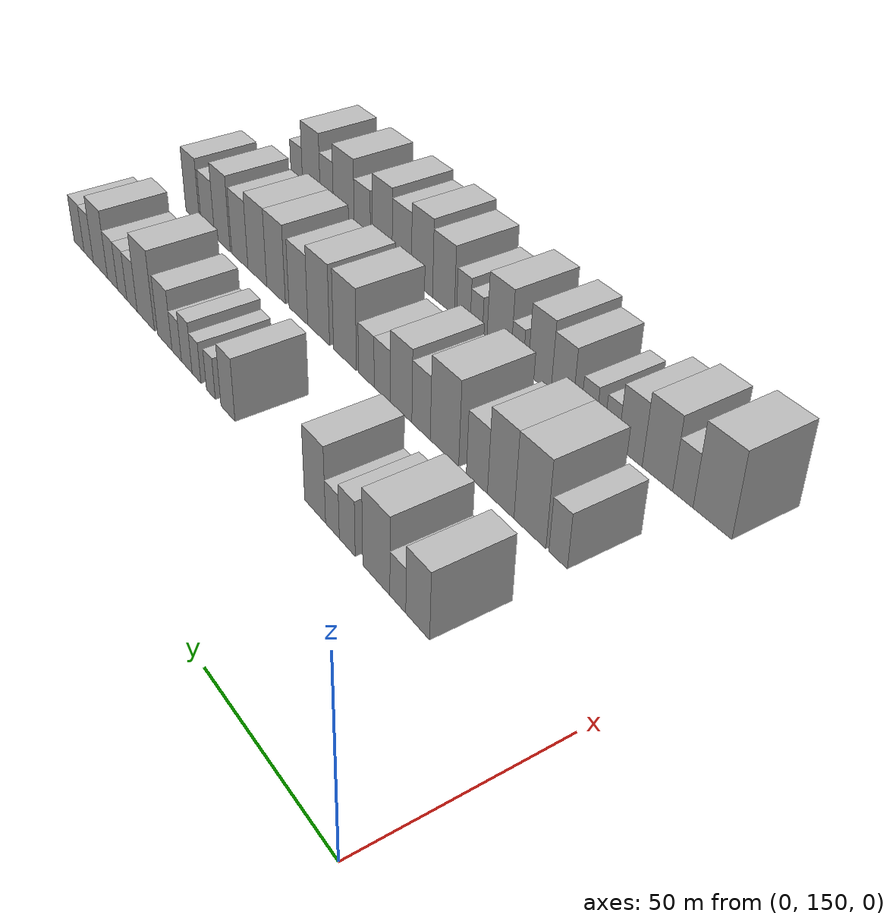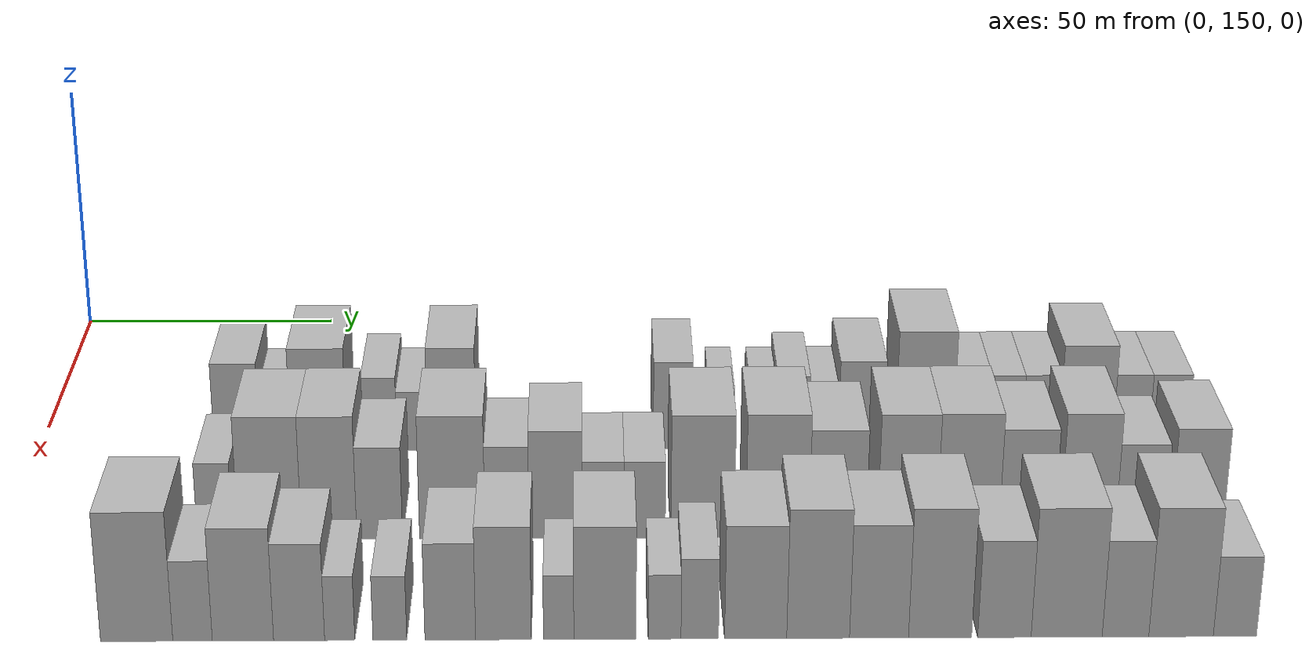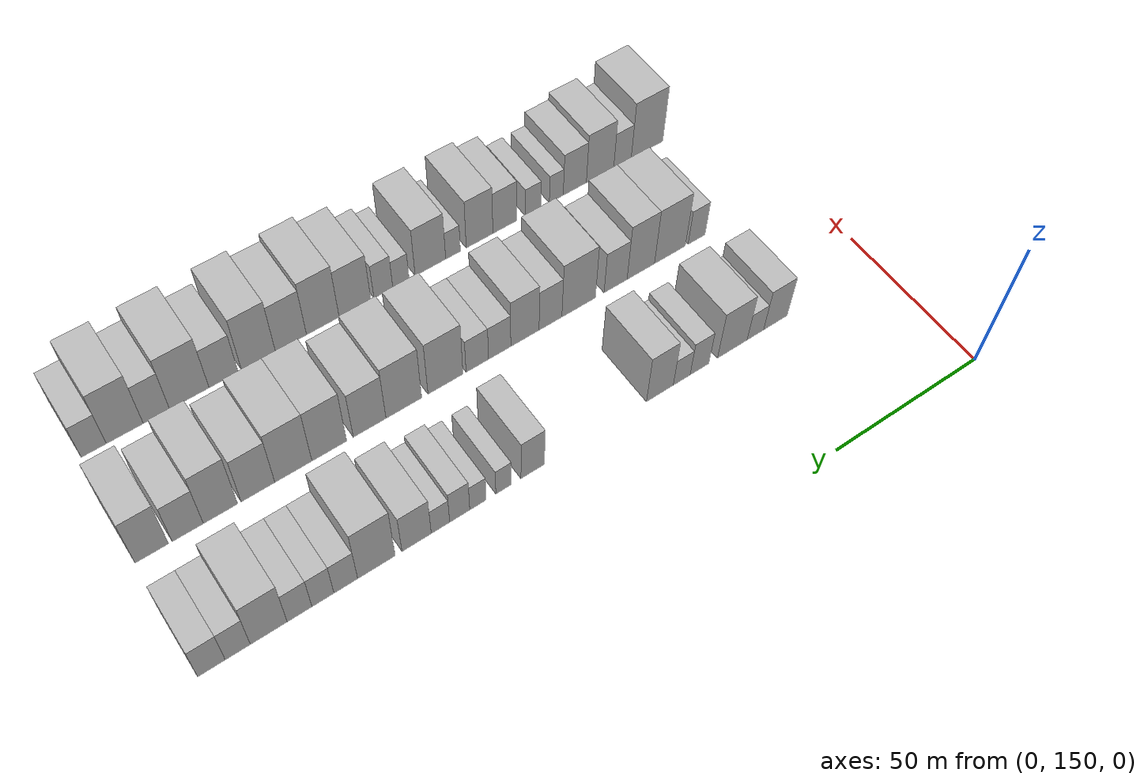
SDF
<sdf version="1.6">
 <world name="default">
  <model name="building_60">
   <static>1</static>
   <pose>50.0000 187.1808 0 0.000000 0.000000 0.000000</pose>
   <link name="link">
    <pose>0 0 9.00 0 0 0</pose>
    <collision name="collision"><geometry><box><size>20.0000 8.5278 18.0000</size></box></geometry></collision>
    <visual name="visual">
     <cast_shadows>0</cast_shadows>
     <geometry><box><size>20.0000 8.5278 18.0000</size></box></geometry>
     <material>
      <script>
       <uri>model://HANNAS_wall/materials/scripts</uri>
       <uri>model://HANNAS_wall/materials/textures</uri>
       <name>vrc/HANNAS_wall</name>
      </script>
     </material>
    </visual>
   </link>
  </model>
  <model name="building_61">
   <static>1</static>
   <pose>50.0000 194.3775 0 0.000000 0.000000 0.000000</pose>
   <link name="link">
    <pose>0 0 6.00 0 0 0</pose>
    <collision name="collision"><geometry><box><size>20.0000 5.8655 12.0000</size></box></geometry></collision>
    <visual name="visual">
     <cast_shadows>0</cast_shadows>
     <geometry><box><size>20.0000 5.8655 12.0000</size></box></geometry>
     <material>
      <script>
       <uri>model://HANNAS_wall/materials/scripts</uri>
       <uri>model://HANNAS_wall/materials/textures</uri>
       <name>vrc/HANNAS_wall</name>
      </script>
     </material>
    </visual>
   </link>
  </model>
  <model name="building_62">
   <static>1</static>
   <pose>50.0000 202.5388 0 0.000000 0.000000 0.000000</pose>
   <link name="link">
    <pose>0 0 10.50 0 0 0</pose>
    <collision name="collision"><geometry><box><size>20.0000 10.4572 21.0000</size></box></geometry></collision>
    <visual name="visual">
     <cast_shadows>0</cast_shadows>
     <geometry><box><size>20.0000 10.4572 21.0000</size></box></geometry>
     <material>
      <script>
       <uri>model://HANNAS_wall/materials/scripts</uri>
       <uri>model://HANNAS_wall/materials/textures</uri>
       <name>vrc/HANNAS_wall</name>
      </script>
     </material>
    </visual>
   </link>
  </model>
  <model name="building_63">
   <static>1</static>
   <pose>50.0000 214.0014 0 0.000000 0.000000 0.000000</pose>
   <link name="link">
    <pose>0 0 7.50 0 0 0</pose>
    <collision name="collision"><geometry><box><size>20.0000 6.4678 15.0000</size></box></geometry></collision>
    <visual name="visual">
     <cast_shadows>0</cast_shadows>
     <geometry><box><size>20.0000 6.4678 15.0000</size></box></geometry>
     <material>
      <script>
       <uri>model://HANNAS_wall/materials/scripts</uri>
       <uri>model://HANNAS_wall/materials/textures</uri>
       <name>vrc/HANNAS_wall</name>
      </script>
     </material>
    </visual>
   </link>
  </model>
  <model name="building_64">
   <static>1</static>
   <pose>50.0000 220.1219 0 0.000000 0.000000 0.000000</pose>
   <link name="link">
    <pose>0 0 6.00 0 0 0</pose>
    <collision name="collision"><geometry><box><size>20.0000 5.7732 12.0000</size></box></geometry></collision>
    <visual name="visual">
     <cast_shadows>0</cast_shadows>
     <geometry><box><size>20.0000 5.7732 12.0000</size></box></geometry>
     <material>
      <script>
       <uri>model://HANNAS_wall/materials/scripts</uri>
       <uri>model://HANNAS_wall/materials/textures</uri>
       <name>vrc/HANNAS_wall</name>
      </script>
     </material>
    </visual>
   </link>
  </model>
  <model name="building_65">
   <static>1</static>
   <pose>50.0000 227.5393 0 0.000000 0.000000 0.000000</pose>
   <link name="link">
    <pose>0 0 10.50 0 0 0</pose>
    <collision name="collision"><geometry><box><size>20.0000 9.0616 21.0000</size></box></geometry></collision>
    <visual name="visual">
     <cast_shadows>0</cast_shadows>
     <geometry><box><size>20.0000 9.0616 21.0000</size></box></geometry>
     <material>
      <script>
       <uri>model://HANNAS_wall/materials/scripts</uri>
       <uri>model://HANNAS_wall/materials/textures</uri>
       <name>vrc/HANNAS_wall</name>
      </script>
     </material>
    </visual>
   </link>
  </model>
  <model name="building_66">
   <static>1</static>
   <pose>50.0000 269.1062 0 0.000000 0.000000 0.000000</pose>
   <link name="link">
    <pose>0 0 9.00 0 0 0</pose>
    <collision name="collision"><geometry><box><size>20.0000 7.3575 18.0000</size></box></geometry></collision>
    <visual name="visual">
     <cast_shadows>0</cast_shadows>
     <geometry><box><size>20.0000 7.3575 18.0000</size></box></geometry>
     <material>
      <script>
       <uri>model://HANNAS_wall/materials/scripts</uri>
       <uri>model://HANNAS_wall/materials/textures</uri>
       <name>vrc/HANNAS_wall</name>
      </script>
     </material>
    </visual>
   </link>
  </model>
  <model name="building_67">
   <static>1</static>
   <pose>50.0000 278.1995 0 0.000000 0.000000 0.000000</pose>
   <link name="link">
    <pose>0 0 6.00 0 0 0</pose>
    <collision name="collision"><geometry><box><size>20.0000 4.8290 12.0000</size></box></geometry></collision>
    <visual name="visual">
     <cast_shadows>0</cast_shadows>
     <geometry><box><size>20.0000 4.8290 12.0000</size></box></geometry>
     <material>
      <script>
       <uri>model://HANNAS_wall/materials/scripts</uri>
       <uri>model://HANNAS_wall/materials/textures</uri>
       <name>vrc/HANNAS_wall</name>
      </script>
     </material>
    </visual>
   </link>
  </model>
  <model name="building_68">
   <static>1</static>
   <pose>50.0000 286.1180 0 0.000000 0.000000 0.000000</pose>
   <link name="link">
    <pose>0 0 6.00 0 0 0</pose>
    <collision name="collision"><geometry><box><size>20.0000 5.0081 12.0000</size></box></geometry></collision>
    <visual name="visual">
     <cast_shadows>0</cast_shadows>
     <geometry><box><size>20.0000 5.0081 12.0000</size></box></geometry>
     <material>
      <script>
       <uri>model://HANNAS_wall/materials/scripts</uri>
       <uri>model://HANNAS_wall/materials/textures</uri>
       <name>vrc/HANNAS_wall</name>
      </script>
     </material>
    </visual>
   </link>
  </model>
  <model name="building_69">
   <static>1</static>
   <pose>50.0000 291.6650 0 0.000000 0.000000 0.000000</pose>
   <link name="link">
    <pose>0 0 7.50 0 0 0</pose>
    <collision name="collision"><geometry><box><size>20.0000 6.0859 15.0000</size></box></geometry></collision>
    <visual name="visual">
     <cast_shadows>0</cast_shadows>
     <geometry><box><size>20.0000 6.0859 15.0000</size></box></geometry>
     <material>
      <script>
       <uri>model://HANNAS_wall/materials/scripts</uri>
       <uri>model://HANNAS_wall/materials/textures</uri>
       <name>vrc/HANNAS_wall</name>
      </script>
     </material>
    </visual>
   </link>
  </model>
  <model name="building_70">
   <static>1</static>
   <pose>50.0000 297.4725 0 0.000000 0.000000 0.000000</pose>
   <link name="link">
    <pose>0 0 6.00 0 0 0</pose>
    <collision name="collision"><geometry><box><size>20.0000 5.5292 12.0000</size></box></geometry></collision>
    <visual name="visual">
     <cast_shadows>0</cast_shadows>
     <geometry><box><size>20.0000 5.5292 12.0000</size></box></geometry>
     <material>
      <script>
       <uri>model://HANNAS_wall/materials/scripts</uri>
       <uri>model://HANNAS_wall/materials/textures</uri>
       <name>vrc/HANNAS_wall</name>
      </script>
     </material>
    </visual>
   </link>
  </model>
  <model name="building_71">
   <static>1</static>
   <pose>50.0000 304.5880 0 0.000000 0.000000 0.000000</pose>
   <link name="link">
    <pose>0 0 9.00 0 0 0</pose>
    <collision name="collision"><geometry><box><size>20.0000 8.7017 18.0000</size></box></geometry></collision>
    <visual name="visual">
     <cast_shadows>0</cast_shadows>
     <geometry><box><size>20.0000 8.7017 18.0000</size></box></geometry>
     <material>
      <script>
       <uri>model://HANNAS_wall/materials/scripts</uri>
       <uri>model://HANNAS_wall/materials/textures</uri>
       <name>vrc/HANNAS_wall</name>
      </script>
     </material>
    </visual>
   </link>
  </model>
  <model name="building_72">
   <static>1</static>
   <pose>50.0000 316.3976 0 0.000000 0.000000 0.000000</pose>
   <link name="link">
    <pose>0 0 12.00 0 0 0</pose>
    <collision name="collision"><geometry><box><size>20.0000 10.9176 24.0000</size></box></geometry></collision>
    <visual name="visual">
     <cast_shadows>0</cast_shadows>
     <geometry><box><size>20.0000 10.9176 24.0000</size></box></geometry>
     <material>
      <script>
       <uri>model://HANNAS_wall/materials/scripts</uri>
       <uri>model://HANNAS_wall/materials/textures</uri>
       <name>vrc/HANNAS_wall</name>
      </script>
     </material>
    </visual>
   </link>
  </model>
  <model name="building_73">
   <static>1</static>
   <pose>50.0000 325.2517 0 0.000000 0.000000 0.000000</pose>
   <link name="link">
    <pose>0 0 7.50 0 0 0</pose>
    <collision name="collision"><geometry><box><size>20.0000 6.7906 15.0000</size></box></geometry></collision>
    <visual name="visual">
     <cast_shadows>0</cast_shadows>
     <geometry><box><size>20.0000 6.7906 15.0000</size></box></geometry>
     <material>
      <script>
       <uri>model://HANNAS_wall/materials/scripts</uri>
       <uri>model://HANNAS_wall/materials/textures</uri>
       <name>vrc/HANNAS_wall</name>
      </script>
     </material>
    </visual>
   </link>
  </model>
  <model name="building_74">
   <static>1</static>
   <pose>50.0000 331.7569 0 0.000000 0.000000 0.000000</pose>
   <link name="link">
    <pose>0 0 7.50 0 0 0</pose>
    <collision name="collision"><geometry><box><size>20.0000 6.2198 15.0000</size></box></geometry></collision>
    <visual name="visual">
     <cast_shadows>0</cast_shadows>
     <geometry><box><size>20.0000 6.2198 15.0000</size></box></geometry>
     <material>
      <script>
       <uri>model://HANNAS_wall/materials/scripts</uri>
       <uri>model://HANNAS_wall/materials/textures</uri>
       <name>vrc/HANNAS_wall</name>
      </script>
     </material>
    </visual>
   </link>
  </model>
  <model name="building_75">
   <static>1</static>
   <pose>50.0000 338.3321 0 0.000000 0.000000 0.000000</pose>
   <link name="link">
    <pose>0 0 7.50 0 0 0</pose>
    <collision name="collision"><geometry><box><size>20.0000 6.9306 15.0000</size></box></geometry></collision>
    <visual name="visual">
     <cast_shadows>0</cast_shadows>
     <geometry><box><size>20.0000 6.9306 15.0000</size></box></geometry>
     <material>
      <script>
       <uri>model://HANNAS_wall/materials/scripts</uri>
       <uri>model://HANNAS_wall/materials/textures</uri>
       <name>vrc/HANNAS_wall</name>
      </script>
     </material>
    </visual>
   </link>
  </model>
  <model name="building_76">
   <static>1</static>
   <pose>50.0000 346.8699 0 0.000000 0.000000 0.000000</pose>
   <link name="link">
    <pose>0 0 10.50 0 0 0</pose>
    <collision name="collision"><geometry><box><size>20.0000 10.1451 21.0000</size></box></geometry></collision>
    <visual name="visual">
     <cast_shadows>0</cast_shadows>
     <geometry><box><size>20.0000 10.1451 21.0000</size></box></geometry>
     <material>
      <script>
       <uri>model://HANNAS_wall/materials/scripts</uri>
       <uri>model://HANNAS_wall/materials/textures</uri>
       <name>vrc/HANNAS_wall</name>
      </script>
     </material>
    </visual>
   </link>
  </model>
  <model name="building_77">
   <static>1</static>
   <pose>50.0000 355.3545 0 0.000000 0.000000 0.000000</pose>
   <link name="link">
    <pose>0 0 7.50 0 0 0</pose>
    <collision name="collision"><geometry><box><size>20.0000 6.8240 15.0000</size></box></geometry></collision>
    <visual name="visual">
     <cast_shadows>0</cast_shadows>
     <geometry><box><size>20.0000 6.8240 15.0000</size></box></geometry>
     <material>
      <script>
       <uri>model://HANNAS_wall/materials/scripts</uri>
       <uri>model://HANNAS_wall/materials/textures</uri>
       <name>vrc/HANNAS_wall</name>
      </script>
     </material>
    </visual>
   </link>
  </model>
  <model name="building_78">
   <static>1</static>
   <pose>50.0000 362.4660 0 0.000000 0.000000 0.000000</pose>
   <link name="link">
    <pose>0 0 7.50 0 0 0</pose>
    <collision name="collision"><geometry><box><size>20.0000 7.3989 15.0000</size></box></geometry></collision>
    <visual name="visual">
     <cast_shadows>0</cast_shadows>
     <geometry><box><size>20.0000 7.3989 15.0000</size></box></geometry>
     <material>
      <script>
       <uri>model://HANNAS_wall/materials/scripts</uri>
       <uri>model://HANNAS_wall/materials/textures</uri>
       <name>vrc/HANNAS_wall</name>
      </script>
     </material>
    </visual>
   </link>
  </model>
  <model name="building_139">
   <static>1</static>
   <pose>85.0000 187.2591 0 0.000000 0.000000 0.000000</pose>
   <link name="link">
    <pose>0 0 7.50 0 0 0</pose>
    <collision name="collision"><geometry><box><size>20.0000 6.1951 15.0000</size></box></geometry></collision>
    <visual name="visual">
     <cast_shadows>0</cast_shadows>
     <geometry><box><size>20.0000 6.1951 15.0000</size></box></geometry>
     <material>
      <script>
       <uri>model://HANNAS_wall/materials/scripts</uri>
       <uri>model://HANNAS_wall/materials/textures</uri>
       <name>vrc/HANNAS_wall</name>
      </script>
     </material>
    </visual>
   </link>
  </model>
  <model name="building_140">
   <static>1</static>
   <pose>85.0000 196.9453 0 0.000000 0.000000 0.000000</pose>
   <link name="link">
    <pose>0 0 12.00 0 0 0</pose>
    <collision name="collision"><geometry><box><size>20.0000 11.1773 24.0000</size></box></geometry></collision>
    <visual name="visual">
     <cast_shadows>0</cast_shadows>
     <geometry><box><size>20.0000 11.1773 24.0000</size></box></geometry>
     <material>
      <script>
       <uri>model://HANNAS_wall/materials/scripts</uri>
       <uri>model://HANNAS_wall/materials/textures</uri>
       <name>vrc/HANNAS_wall</name>
      </script>
     </material>
    </visual>
   </link>
  </model>
  <model name="building_141">
   <static>1</static>
   <pose>85.0000 207.4113 0 0.000000 0.000000 0.000000</pose>
   <link name="link">
    <pose>0 0 12.00 0 0 0</pose>
    <collision name="collision"><geometry><box><size>20.0000 9.7547 24.0000</size></box></geometry></collision>
    <visual name="visual">
     <cast_shadows>0</cast_shadows>
     <geometry><box><size>20.0000 9.7547 24.0000</size></box></geometry>
     <material>
      <script>
       <uri>model://HANNAS_wall/materials/scripts</uri>
       <uri>model://HANNAS_wall/materials/textures</uri>
       <name>vrc/HANNAS_wall</name>
      </script>
     </material>
    </visual>
   </link>
  </model>
  <model name="building_142">
   <static>1</static>
   <pose>85.0000 216.3251 0 0.000000 0.000000 0.000000</pose>
   <link name="link">
    <pose>0 0 9.00 0 0 0</pose>
    <collision name="collision"><geometry><box><size>20.0000 8.0729 18.0000</size></box></geometry></collision>
    <visual name="visual">
     <cast_shadows>0</cast_shadows>
     <geometry><box><size>20.0000 8.0729 18.0000</size></box></geometry>
     <material>
      <script>
       <uri>model://HANNAS_wall/materials/scripts</uri>
       <uri>model://HANNAS_wall/materials/textures</uri>
       <name>vrc/HANNAS_wall</name>
      </script>
     </material>
    </visual>
   </link>
  </model>
  <model name="building_143">
   <static>1</static>
   <pose>85.0000 229.1419 0 0.000000 0.000000 0.000000</pose>
   <link name="link">
    <pose>0 0 12.00 0 0 0</pose>
    <collision name="collision"><geometry><box><size>20.0000 11.5607 24.0000</size></box></geometry></collision>
    <visual name="visual">
     <cast_shadows>0</cast_shadows>
     <geometry><box><size>20.0000 11.5607 24.0000</size></box></geometry>
     <material>
      <script>
       <uri>model://HANNAS_wall/materials/scripts</uri>
       <uri>model://HANNAS_wall/materials/textures</uri>
       <name>vrc/HANNAS_wall</name>
      </script>
     </material>
    </visual>
   </link>
  </model>
  <model name="building_144">
   <static>1</static>
   <pose>85.0000 238.7990 0 0.000000 0.000000 0.000000</pose>
   <link name="link">
    <pose>0 0 9.00 0 0 0</pose>
    <collision name="collision"><geometry><box><size>20.0000 7.7534 18.0000</size></box></geometry></collision>
    <visual name="visual">
     <cast_shadows>0</cast_shadows>
     <geometry><box><size>20.0000 7.7534 18.0000</size></box></geometry>
     <material>
      <script>
       <uri>model://HANNAS_wall/materials/scripts</uri>
       <uri>model://HANNAS_wall/materials/textures</uri>
       <name>vrc/HANNAS_wall</name>
      </script>
     </material>
    </visual>
   </link>
  </model>
  <model name="building_145">
   <static>1</static>
   <pose>85.0000 247.3894 0 0.000000 0.000000 0.000000</pose>
   <link name="link">
    <pose>0 0 10.50 0 0 0</pose>
    <collision name="collision"><geometry><box><size>20.0000 9.4276 21.0000</size></box></geometry></collision>
    <visual name="visual">
     <cast_shadows>0</cast_shadows>
     <geometry><box><size>20.0000 9.4276 21.0000</size></box></geometry>
     <material>
      <script>
       <uri>model://HANNAS_wall/materials/scripts</uri>
       <uri>model://HANNAS_wall/materials/textures</uri>
       <name>vrc/HANNAS_wall</name>
      </script>
     </material>
    </visual>
   </link>
  </model>
  <model name="building_146">
   <static>1</static>
   <pose>85.0000 255.7810 0 0.000000 0.000000 0.000000</pose>
   <link name="link">
    <pose>0 0 7.50 0 0 0</pose>
    <collision name="collision"><geometry><box><size>20.0000 7.3555 15.0000</size></box></geometry></collision>
    <visual name="visual">
     <cast_shadows>0</cast_shadows>
     <geometry><box><size>20.0000 7.3555 15.0000</size></box></geometry>
     <material>
      <script>
       <uri>model://HANNAS_wall/materials/scripts</uri>
       <uri>model://HANNAS_wall/materials/textures</uri>
       <name>vrc/HANNAS_wall</name>
      </script>
     </material>
    </visual>
   </link>
  </model>
  <model name="building_147">
   <static>1</static>
   <pose>85.0000 263.1108 0 0.000000 0.000000 0.000000</pose>
   <link name="link">
    <pose>0 0 7.50 0 0 0</pose>
    <collision name="collision"><geometry><box><size>20.0000 7.3042 15.0000</size></box></geometry></collision>
    <visual name="visual">
     <cast_shadows>0</cast_shadows>
     <geometry><box><size>20.0000 7.3042 15.0000</size></box></geometry>
     <material>
      <script>
       <uri>model://HANNAS_wall/materials/scripts</uri>
       <uri>model://HANNAS_wall/materials/textures</uri>
       <name>vrc/HANNAS_wall</name>
      </script>
     </material>
    </visual>
   </link>
  </model>
  <model name="building_148">
   <static>1</static>
   <pose>85.0000 273.3666 0 0.000000 0.000000 0.000000</pose>
   <link name="link">
    <pose>0 0 12.00 0 0 0</pose>
    <collision name="collision"><geometry><box><size>20.0000 11.2073 24.0000</size></box></geometry></collision>
    <visual name="visual">
     <cast_shadows>0</cast_shadows>
     <geometry><box><size>20.0000 11.2073 24.0000</size></box></geometry>
     <material>
      <script>
       <uri>model://HANNAS_wall/materials/scripts</uri>
       <uri>model://HANNAS_wall/materials/textures</uri>
       <name>vrc/HANNAS_wall</name>
      </script>
     </material>
    </visual>
   </link>
  </model>
  <model name="building_149">
   <static>1</static>
   <pose>85.0000 286.5728 0 0.000000 0.000000 0.000000</pose>
   <link name="link">
    <pose>0 0 12.00 0 0 0</pose>
    <collision name="collision"><geometry><box><size>20.0000 11.2051 24.0000</size></box></geometry></collision>
    <visual name="visual">
     <cast_shadows>0</cast_shadows>
     <geometry><box><size>20.0000 11.2051 24.0000</size></box></geometry>
     <material>
      <script>
       <uri>model://HANNAS_wall/materials/scripts</uri>
       <uri>model://HANNAS_wall/materials/textures</uri>
       <name>vrc/HANNAS_wall</name>
      </script>
     </material>
    </visual>
   </link>
  </model>
  <model name="building_150">
   <static>1</static>
   <pose>85.0000 297.2205 0 0.000000 0.000000 0.000000</pose>
   <link name="link">
    <pose>0 0 10.50 0 0 0</pose>
    <collision name="collision"><geometry><box><size>20.0000 10.0902 21.0000</size></box></geometry></collision>
    <visual name="visual">
     <cast_shadows>0</cast_shadows>
     <geometry><box><size>20.0000 10.0902 21.0000</size></box></geometry>
     <material>
      <script>
       <uri>model://HANNAS_wall/materials/scripts</uri>
       <uri>model://HANNAS_wall/materials/textures</uri>
       <name>vrc/HANNAS_wall</name>
      </script>
     </material>
    </visual>
   </link>
  </model>
  <model name="building_151">
   <static>1</static>
   <pose>85.0000 309.5116 0 0.000000 0.000000 0.000000</pose>
   <link name="link">
    <pose>0 0 12.00 0 0 0</pose>
    <collision name="collision"><geometry><box><size>20.0000 10.4921 24.0000</size></box></geometry></collision>
    <visual name="visual">
     <cast_shadows>0</cast_shadows>
     <geometry><box><size>20.0000 10.4921 24.0000</size></box></geometry>
     <material>
      <script>
       <uri>model://HANNAS_wall/materials/scripts</uri>
       <uri>model://HANNAS_wall/materials/textures</uri>
       <name>vrc/HANNAS_wall</name>
      </script>
     </material>
    </visual>
   </link>
  </model>
  <model name="building_152">
   <static>1</static>
   <pose>85.0000 320.2654 0 0.000000 0.000000 0.000000</pose>
   <link name="link">
    <pose>0 0 12.00 0 0 0</pose>
    <collision name="collision"><geometry><box><size>20.0000 11.0153 24.0000</size></box></geometry></collision>
    <visual name="visual">
     <cast_shadows>0</cast_shadows>
     <geometry><box><size>20.0000 11.0153 24.0000</size></box></geometry>
     <material>
      <script>
       <uri>model://HANNAS_wall/materials/scripts</uri>
       <uri>model://HANNAS_wall/materials/textures</uri>
       <name>vrc/HANNAS_wall</name>
      </script>
     </material>
    </visual>
   </link>
  </model>
  <model name="building_153">
   <static>1</static>
   <pose>85.0000 330.6839 0 0.000000 0.000000 0.000000</pose>
   <link name="link">
    <pose>0 0 10.50 0 0 0</pose>
    <collision name="collision"><geometry><box><size>20.0000 9.8218 21.0000</size></box></geometry></collision>
    <visual name="visual">
     <cast_shadows>0</cast_shadows>
     <geometry><box><size>20.0000 9.8218 21.0000</size></box></geometry>
     <material>
      <script>
       <uri>model://HANNAS_wall/materials/scripts</uri>
       <uri>model://HANNAS_wall/materials/textures</uri>
       <name>vrc/HANNAS_wall</name>
      </script>
     </material>
    </visual>
   </link>
  </model>
  <model name="building_154">
   <static>1</static>
   <pose>85.0000 341.4989 0 0.000000 0.000000 0.000000</pose>
   <link name="link">
    <pose>0 0 12.00 0 0 0</pose>
    <collision name="collision"><geometry><box><size>20.0000 9.8080 24.0000</size></box></geometry></collision>
    <visual name="visual">
     <cast_shadows>0</cast_shadows>
     <geometry><box><size>20.0000 9.8080 24.0000</size></box></geometry>
     <material>
      <script>
       <uri>model://HANNAS_wall/materials/scripts</uri>
       <uri>model://HANNAS_wall/materials/textures</uri>
       <name>vrc/HANNAS_wall</name>
      </script>
     </material>
    </visual>
   </link>
  </model>
  <model name="building_155">
   <static>1</static>
   <pose>85.0000 350.7949 0 0.000000 0.000000 0.000000</pose>
   <link name="link">
    <pose>0 0 9.00 0 0 0</pose>
    <collision name="collision"><geometry><box><size>20.0000 8.7841 18.0000</size></box></geometry></collision>
    <visual name="visual">
     <cast_shadows>0</cast_shadows>
     <geometry><box><size>20.0000 8.7841 18.0000</size></box></geometry>
     <material>
      <script>
       <uri>model://HANNAS_wall/materials/scripts</uri>
       <uri>model://HANNAS_wall/materials/textures</uri>
       <name>vrc/HANNAS_wall</name>
      </script>
     </material>
    </visual>
   </link>
  </model>
  <model name="building_156">
   <static>1</static>
   <pose>85.0000 360.8425 0 0.000000 0.000000 0.000000</pose>
   <link name="link">
    <pose>0 0 10.50 0 0 0</pose>
    <collision name="collision"><geometry><box><size>20.0000 9.3110 21.0000</size></box></geometry></collision>
    <visual name="visual">
     <cast_shadows>0</cast_shadows>
     <geometry><box><size>20.0000 9.3110 21.0000</size></box></geometry>
     <material>
      <script>
       <uri>model://HANNAS_wall/materials/scripts</uri>
       <uri>model://HANNAS_wall/materials/textures</uri>
       <name>vrc/HANNAS_wall</name>
      </script>
     </material>
    </visual>
   </link>
  </model>
  <model name="building_212">
   <static>1</static>
   <pose>120.0000 178.5170 0 0.000000 0.000000 0.000000</pose>
   <link name="link">
    <pose>0 0 12.00 0 0 0</pose>
    <collision name="collision"><geometry><box><size>20.0000 11.9284 24.0000</size></box></geometry></collision>
    <visual name="visual">
     <cast_shadows>0</cast_shadows>
     <geometry><box><size>20.0000 11.9284 24.0000</size></box></geometry>
     <material>
      <script>
       <uri>model://HANNAS_wall/materials/scripts</uri>
       <uri>model://HANNAS_wall/materials/textures</uri>
       <name>vrc/HANNAS_wall</name>
      </script>
     </material>
    </visual>
   </link>
  </model>
  <model name="building_213">
   <static>1</static>
   <pose>120.0000 187.7416 0 0.000000 0.000000 0.000000</pose>
   <link name="link">
    <pose>0 0 7.50 0 0 0</pose>
    <collision name="collision"><geometry><box><size>20.0000 6.5207 15.0000</size></box></geometry></collision>
    <visual name="visual">
     <cast_shadows>0</cast_shadows>
     <geometry><box><size>20.0000 6.5207 15.0000</size></box></geometry>
     <material>
      <script>
       <uri>model://HANNAS_wall/materials/scripts</uri>
       <uri>model://HANNAS_wall/materials/textures</uri>
       <name>vrc/HANNAS_wall</name>
      </script>
     </material>
    </visual>
   </link>
  </model>
  <model name="building_214">
   <static>1</static>
   <pose>120.0000 196.0596 0 0.000000 0.000000 0.000000</pose>
   <link name="link">
    <pose>0 0 10.50 0 0 0</pose>
    <collision name="collision"><geometry><box><size>20.0000 10.1154 21.0000</size></box></geometry></collision>
    <visual name="visual">
     <cast_shadows>0</cast_shadows>
     <geometry><box><size>20.0000 10.1154 21.0000</size></box></geometry>
     <material>
      <script>
       <uri>model://HANNAS_wall/materials/scripts</uri>
       <uri>model://HANNAS_wall/materials/textures</uri>
       <name>vrc/HANNAS_wall</name>
      </script>
     </material>
    </visual>
   </link>
  </model>
  <model name="building_215">
   <static>1</static>
   <pose>120.0000 205.3338 0 0.000000 0.000000 0.000000</pose>
   <link name="link">
    <pose>0 0 9.00 0 0 0</pose>
    <collision name="collision"><geometry><box><size>20.0000 8.4330 18.0000</size></box></geometry></collision>
    <visual name="visual">
     <cast_shadows>0</cast_shadows>
     <geometry><box><size>20.0000 8.4330 18.0000</size></box></geometry>
     <material>
      <script>
       <uri>model://HANNAS_wall/materials/scripts</uri>
       <uri>model://HANNAS_wall/materials/textures</uri>
       <name>vrc/HANNAS_wall</name>
      </script>
     </material>
    </visual>
   </link>
  </model>
  <model name="building_216">
   <static>1</static>
   <pose>120.0000 212.0446 0 0.000000 0.000000 0.000000</pose>
   <link name="link">
    <pose>0 0 6.00 0 0 0</pose>
    <collision name="collision"><geometry><box><size>20.0000 4.9886 12.0000</size></box></geometry></collision>
    <visual name="visual">
     <cast_shadows>0</cast_shadows>
     <geometry><box><size>20.0000 4.9886 12.0000</size></box></geometry>
     <material>
      <script>
       <uri>model://HANNAS_wall/materials/scripts</uri>
       <uri>model://HANNAS_wall/materials/textures</uri>
       <name>vrc/HANNAS_wall</name>
      </script>
     </material>
    </visual>
   </link>
  </model>
  <model name="building_217">
   <static>1</static>
   <pose>120.0000 220.3315 0 0.000000 0.000000 0.000000</pose>
   <link name="link">
    <pose>0 0 6.00 0 0 0</pose>
    <collision name="collision"><geometry><box><size>20.0000 5.5852 12.0000</size></box></geometry></collision>
    <visual name="visual">
     <cast_shadows>0</cast_shadows>
     <geometry><box><size>20.0000 5.5852 12.0000</size></box></geometry>
     <material>
      <script>
       <uri>model://HANNAS_wall/materials/scripts</uri>
       <uri>model://HANNAS_wall/materials/textures</uri>
       <name>vrc/HANNAS_wall</name>
      </script>
     </material>
    </visual>
   </link>
  </model>
  <model name="building_218">
   <static>1</static>
   <pose>120.0000 230.3141 0 0.000000 0.000000 0.000000</pose>
   <link name="link">
    <pose>0 0 9.00 0 0 0</pose>
    <collision name="collision"><geometry><box><size>20.0000 8.3798 18.0000</size></box></geometry></collision>
    <visual name="visual">
     <cast_shadows>0</cast_shadows>
     <geometry><box><size>20.0000 8.3798 18.0000</size></box></geometry>
     <material>
      <script>
       <uri>model://HANNAS_wall/materials/scripts</uri>
       <uri>model://HANNAS_wall/materials/textures</uri>
       <name>vrc/HANNAS_wall</name>
      </script>
     </material>
    </visual>
   </link>
  </model>
  <model name="building_219">
   <static>1</static>
   <pose>120.0000 239.1104 0 0.000000 0.000000 0.000000</pose>
   <link name="link">
    <pose>0 0 10.50 0 0 0</pose>
    <collision name="collision"><geometry><box><size>20.0000 9.2128 21.0000</size></box></geometry></collision>
    <visual name="visual">
     <cast_shadows>0</cast_shadows>
     <geometry><box><size>20.0000 9.2128 21.0000</size></box></geometry>
     <material>
      <script>
       <uri>model://HANNAS_wall/materials/scripts</uri>
       <uri>model://HANNAS_wall/materials/textures</uri>
       <name>vrc/HANNAS_wall</name>
      </script>
     </material>
    </visual>
   </link>
  </model>
  <model name="building_220">
   <static>1</static>
   <pose>120.0000 248.2296 0 0.000000 0.000000 0.000000</pose>
   <link name="link">
    <pose>0 0 6.00 0 0 0</pose>
    <collision name="collision"><geometry><box><size>20.0000 5.0256 12.0000</size></box></geometry></collision>
    <visual name="visual">
     <cast_shadows>0</cast_shadows>
     <geometry><box><size>20.0000 5.0256 12.0000</size></box></geometry>
     <material>
      <script>
       <uri>model://HANNAS_wall/materials/scripts</uri>
       <uri>model://HANNAS_wall/materials/textures</uri>
       <name>vrc/HANNAS_wall</name>
      </script>
     </material>
    </visual>
   </link>
  </model>
  <model name="building_221">
   <static>1</static>
   <pose>120.0000 255.8933 0 0.000000 0.000000 0.000000</pose>
   <link name="link">
    <pose>0 0 10.50 0 0 0</pose>
    <collision name="collision"><geometry><box><size>20.0000 10.3018 21.0000</size></box></geometry></collision>
    <visual name="visual">
     <cast_shadows>0</cast_shadows>
     <geometry><box><size>20.0000 10.3018 21.0000</size></box></geometry>
     <material>
      <script>
       <uri>model://HANNAS_wall/materials/scripts</uri>
       <uri>model://HANNAS_wall/materials/textures</uri>
       <name>vrc/HANNAS_wall</name>
      </script>
     </material>
    </visual>
   </link>
  </model>
  <model name="building_222">
   <static>1</static>
   <pose>120.0000 265.7516 0 0.000000 0.000000 0.000000</pose>
   <link name="link">
    <pose>0 0 6.00 0 0 0</pose>
    <collision name="collision"><geometry><box><size>20.0000 5.4150 12.0000</size></box></geometry></collision>
    <visual name="visual">
     <cast_shadows>0</cast_shadows>
     <geometry><box><size>20.0000 5.4150 12.0000</size></box></geometry>
     <material>
      <script>
       <uri>model://HANNAS_wall/materials/scripts</uri>
       <uri>model://HANNAS_wall/materials/textures</uri>
       <name>vrc/HANNAS_wall</name>
      </script>
     </material>
    </visual>
   </link>
  </model>
  <model name="building_223">
   <static>1</static>
   <pose>120.0000 271.5663 0 0.000000 0.000000 0.000000</pose>
   <link name="link">
    <pose>0 0 7.50 0 0 0</pose>
    <collision name="collision"><geometry><box><size>20.0000 6.2143 15.0000</size></box></geometry></collision>
    <visual name="visual">
     <cast_shadows>0</cast_shadows>
     <geometry><box><size>20.0000 6.2143 15.0000</size></box></geometry>
     <material>
      <script>
       <uri>model://HANNAS_wall/materials/scripts</uri>
       <uri>model://HANNAS_wall/materials/textures</uri>
       <name>vrc/HANNAS_wall</name>
      </script>
     </material>
    </visual>
   </link>
  </model>
  <model name="building_224">
   <static>1</static>
   <pose>120.0000 280.8193 0 0.000000 0.000000 0.000000</pose>
   <link name="link">
    <pose>0 0 10.50 0 0 0</pose>
    <collision name="collision"><geometry><box><size>20.0000 10.2917 21.0000</size></box></geometry></collision>
    <visual name="visual">
     <cast_shadows>0</cast_shadows>
     <geometry><box><size>20.0000 10.2917 21.0000</size></box></geometry>
     <material>
      <script>
       <uri>model://HANNAS_wall/materials/scripts</uri>
       <uri>model://HANNAS_wall/materials/textures</uri>
       <name>vrc/HANNAS_wall</name>
      </script>
     </material>
    </visual>
   </link>
  </model>
  <model name="building_225">
   <static>1</static>
   <pose>120.0000 291.1669 0 0.000000 0.000000 0.000000</pose>
   <link name="link">
    <pose>0 0 12.00 0 0 0</pose>
    <collision name="collision"><geometry><box><size>20.0000 10.4035 24.0000</size></box></geometry></collision>
    <visual name="visual">
     <cast_shadows>0</cast_shadows>
     <geometry><box><size>20.0000 10.4035 24.0000</size></box></geometry>
     <material>
      <script>
       <uri>model://HANNAS_wall/materials/scripts</uri>
       <uri>model://HANNAS_wall/materials/textures</uri>
       <name>vrc/HANNAS_wall</name>
      </script>
     </material>
    </visual>
   </link>
  </model>
  <model name="building_226">
   <static>1</static>
   <pose>120.0000 301.2531 0 0.000000 0.000000 0.000000</pose>
   <link name="link">
    <pose>0 0 10.50 0 0 0</pose>
    <collision name="collision"><geometry><box><size>20.0000 9.7687 21.0000</size></box></geometry></collision>
    <visual name="visual">
     <cast_shadows>0</cast_shadows>
     <geometry><box><size>20.0000 9.7687 21.0000</size></box></geometry>
     <material>
      <script>
       <uri>model://HANNAS_wall/materials/scripts</uri>
       <uri>model://HANNAS_wall/materials/textures</uri>
       <name>vrc/HANNAS_wall</name>
      </script>
     </material>
    </visual>
   </link>
  </model>
  <model name="building_227">
   <static>1</static>
   <pose>120.0000 311.3755 0 0.000000 0.000000 0.000000</pose>
   <link name="link">
    <pose>0 0 12.00 0 0 0</pose>
    <collision name="collision"><geometry><box><size>20.0000 10.4762 24.0000</size></box></geometry></collision>
    <visual name="visual">
     <cast_shadows>0</cast_shadows>
     <geometry><box><size>20.0000 10.4762 24.0000</size></box></geometry>
     <material>
      <script>
       <uri>model://HANNAS_wall/materials/scripts</uri>
       <uri>model://HANNAS_wall/materials/textures</uri>
       <name>vrc/HANNAS_wall</name>
      </script>
     </material>
    </visual>
   </link>
  </model>
  <model name="building_228">
   <static>1</static>
   <pose>120.0000 322.0416 0 0.000000 0.000000 0.000000</pose>
   <link name="link">
    <pose>0 0 9.00 0 0 0</pose>
    <collision name="collision"><geometry><box><size>20.0000 8.8560 18.0000</size></box></geometry></collision>
    <visual name="visual">
     <cast_shadows>0</cast_shadows>
     <geometry><box><size>20.0000 8.8560 18.0000</size></box></geometry>
     <material>
      <script>
       <uri>model://HANNAS_wall/materials/scripts</uri>
       <uri>model://HANNAS_wall/materials/textures</uri>
       <name>vrc/HANNAS_wall</name>
      </script>
     </material>
    </visual>
   </link>
  </model>
  <model name="building_229">
   <static>1</static>
   <pose>120.0000 332.3618 0 0.000000 0.000000 0.000000</pose>
   <link name="link">
    <pose>0 0 12.00 0 0 0</pose>
    <collision name="collision"><geometry><box><size>20.0000 11.7844 24.0000</size></box></geometry></collision>
    <visual name="visual">
     <cast_shadows>0</cast_shadows>
     <geometry><box><size>20.0000 11.7844 24.0000</size></box></geometry>
     <material>
      <script>
       <uri>model://HANNAS_wall/materials/scripts</uri>
       <uri>model://HANNAS_wall/materials/textures</uri>
       <name>vrc/HANNAS_wall</name>
      </script>
     </material>
    </visual>
   </link>
  </model>
  <model name="building_230">
   <static>1</static>
   <pose>120.0000 342.1231 0 0.000000 0.000000 0.000000</pose>
   <link name="link">
    <pose>0 0 9.00 0 0 0</pose>
    <collision name="collision"><geometry><box><size>20.0000 7.7382 18.0000</size></box></geometry></collision>
    <visual name="visual">
     <cast_shadows>0</cast_shadows>
     <geometry><box><size>20.0000 7.7382 18.0000</size></box></geometry>
     <material>
      <script>
       <uri>model://HANNAS_wall/materials/scripts</uri>
       <uri>model://HANNAS_wall/materials/textures</uri>
       <name>vrc/HANNAS_wall</name>
      </script>
     </material>
    </visual>
   </link>
  </model>
  <model name="building_231">
   <static>1</static>
   <pose>120.0000 351.3476 0 0.000000 0.000000 0.000000</pose>
   <link name="link">
    <pose>0 0 12.00 0 0 0</pose>
    <collision name="collision"><geometry><box><size>20.0000 10.7108 24.0000</size></box></geometry></collision>
    <visual name="visual">
     <cast_shadows>0</cast_shadows>
     <geometry><box><size>20.0000 10.7108 24.0000</size></box></geometry>
     <material>
      <script>
       <uri>model://HANNAS_wall/materials/scripts</uri>
       <uri>model://HANNAS_wall/materials/textures</uri>
       <name>vrc/HANNAS_wall</name>
      </script>
     </material>
    </visual>
   </link>
  </model>
  <model name="building_232">
   <static>1</static>
   <pose>120.0000 360.2911 0 0.000000 0.000000 0.000000</pose>
   <link name="link">
    <pose>0 0 7.50 0 0 0</pose>
    <collision name="collision"><geometry><box><size>20.0000 7.1763 15.0000</size></box></geometry></collision>
    <visual name="visual">
     <cast_shadows>0</cast_shadows>
     <geometry><box><size>20.0000 7.1763 15.0000</size></box></geometry>
     <material>
      <script>
       <uri>model://HANNAS_wall/materials/scripts</uri>
       <uri>model://HANNAS_wall/materials/textures</uri>
       <name>vrc/HANNAS_wall</name>
      </script>
     </material>
    </visual>
   </link>
  </model>
 </world>
</sdf>
